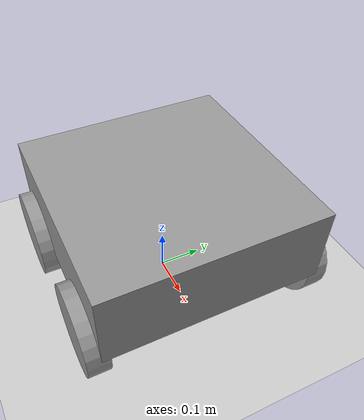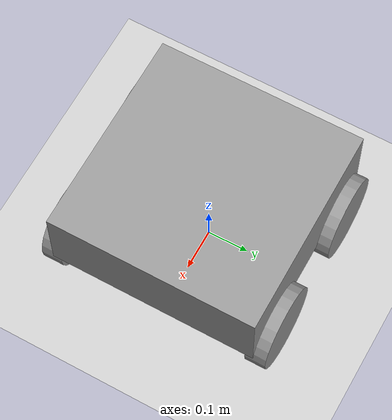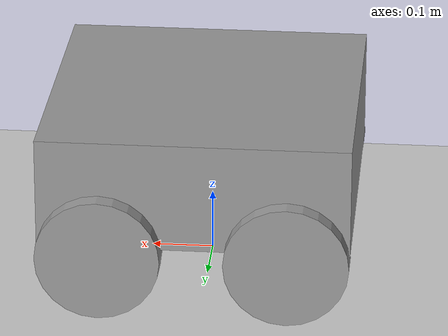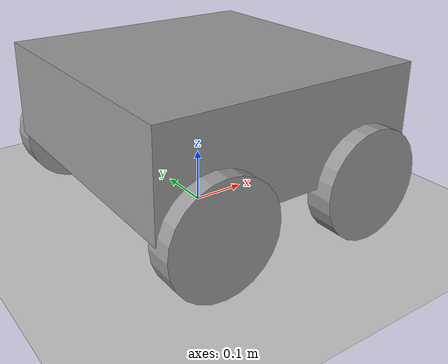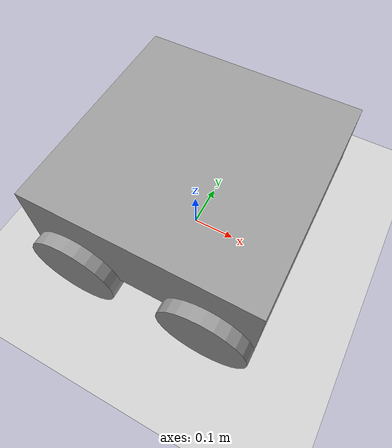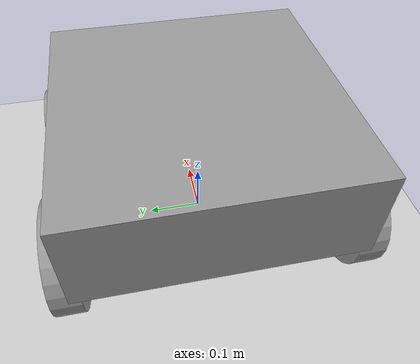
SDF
<?xml version="1.0"?>
<sdf version="1.4">
  <world name="default">

    <!-- Ground Plane -->
    <include>
      <uri>model://ground_plane</uri>
    </include>

    <include>
      <uri>model://sun</uri>
    </include>

    <include>
      <name>Carrinho_subs</name>
      <pose>0 0 0.12 0 0 0</pose>
      <uri>model://Carrinho_subs</uri>
    </include>

  </world>
</sdf>

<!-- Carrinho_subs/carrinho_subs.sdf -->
<sdf version='1.6'>
  <model name='Carrinho_subs'>
    <link name='Main'>
      <pose frame=''>0.01 -0 0.08 0 -0 0</pose>
      <inertial>
        <mass>1</mass>
        <inertia>
          <ixx>0.166667</ixx>
          <ixy>0</ixy>
          <ixz>0</ixz>
          <iyy>0.166667</iyy>
          <iyz>0</iyz>
          <izz>0.166667</izz>
        </inertia>
        <pose frame=''>0 0 0 0 -0 0</pose>
      </inertial>
      <self_collide>0</self_collide>
      <kinematic>0</kinematic>
      <visual name='visual'>
        <pose frame=''>0 0 0 0 -0 0</pose>
        <geometry>
          <box>
            <size>0.5 0.5 0.18</size>
          </box>
        </geometry>
        <material>
          <lighting>1</lighting>
          <script>
            <uri>file://media/materials/scripts/gazebo.material</uri>
            <name>Gazebo/Grey</name>
          </script>
          <ambient>1 1 1 1</ambient>
          <diffuse>0.7 0.7 0.7 1</diffuse>
          <specular>0.01 0.01 0.01 1</specular>
          <emissive>0 0 0 1</emissive>
          <shader type='vertex'>
            <normal_map>__default__</normal_map>
          </shader>
        </material>
        <cast_shadows>1</cast_shadows>
        <transparency>0</transparency>
      </visual>
      <collision name='collision'>
        <laser_retro>0</laser_retro>
        <max_contacts>10</max_contacts>
        <pose frame=''>0 0 0 0 -0 0</pose>
        <geometry>
          <box>
            <size>0.5 0.5 0.18</size>
          </box>
        </geometry>
        <surface>
          <friction>
            <ode>
              <mu>1</mu>
              <mu2>1</mu2>
              <fdir1>0 0 0</fdir1>
              <slip1>0</slip1>
              <slip2>0</slip2>
            </ode>
            <torsional>
              <coefficient>1</coefficient>
              <patch_radius>0</patch_radius>
              <surface_radius>0</surface_radius>
              <use_patch_radius>1</use_patch_radius>
              <ode>
                <slip>0</slip>
              </ode>
            </torsional>
          </friction>
          <bounce>
            <restitution_coefficient>0</restitution_coefficient>
            <threshold>1e+06</threshold>
          </bounce>
          <contact>
            <collide_without_contact>0</collide_without_contact>
            <collide_without_contact_bitmask>1</collide_without_contact_bitmask>
            <collide_bitmask>1</collide_bitmask>
            <ode>
              <soft_cfm>0</soft_cfm>
              <soft_erp>0.2</soft_erp>
              <kp>1e+13</kp>
              <kd>1</kd>
              <max_vel>0.01</max_vel>
              <min_depth>0</min_depth>
            </ode>
            <bullet>
              <split_impulse>1</split_impulse>
              <split_impulse_penetration_threshold>-0.01</split_impulse_penetration_threshold>
              <soft_cfm>0</soft_cfm>
              <soft_erp>0.2</soft_erp>
              <kp>1e+13</kp>
              <kd>1</kd>
            </bullet>
          </contact>
        </surface>
      </collision>
    </link>
    <link name='Roda_Back_Right'>
      <pose frame=''>-0.14 -0.255 -0.02 1.5708 -0 0</pose>
      <inertial>
        <mass>1</mass>
        <inertia>
          <ixx>0.145833</ixx>
          <ixy>0</ixy>
          <ixz>0</ixz>
          <iyy>0.145833</iyy>
          <iyz>0</iyz>
          <izz>0.125</izz>
        </inertia>
        <pose frame=''>0 0 0 0 -0 0</pose>
      </inertial>
      <self_collide>0</self_collide>
      <kinematic>0</kinematic>
      <visual name='visual'>
        <pose frame=''>0 0 0 0 -0 0</pose>
        <geometry>
          <cylinder>
            <radius>0.1</radius>
            <length>0.05</length>
          </cylinder>
        </geometry>
        <material>
          <lighting>1</lighting>
          <script>
            <uri>file://media/materials/scripts/gazebo.material</uri>
            <name>Gazebo/Grey</name>
          </script>
          <ambient>0.3 0.3 0.3 1</ambient>
          <diffuse>0.7 0.7 0.7 1</diffuse>
          <specular>0.01 0.01 0.01 1</specular>
          <emissive>0 0 0 1</emissive>
          <shader type='vertex'>
            <normal_map>__default__</normal_map>
          </shader>
        </material>
        <cast_shadows>1</cast_shadows>
        <transparency>0</transparency>
      </visual>
      <collision name='collision'>
        <laser_retro>0</laser_retro>
        <max_contacts>10</max_contacts>
        <pose frame=''>0 0 0 0 -0 0</pose>
        <geometry>
          <cylinder>
            <radius>0.1</radius>
            <length>0.05</length>
          </cylinder>
        </geometry>
        <surface>
          <friction>
            <ode>
              <mu>1</mu>
              <mu2>1</mu2>
              <fdir1>0 0 0</fdir1>
              <slip1>0</slip1>
              <slip2>0</slip2>
            </ode>
            <torsional>
              <coefficient>1</coefficient>
              <patch_radius>0</patch_radius>
              <surface_radius>0</surface_radius>
              <use_patch_radius>1</use_patch_radius>
              <ode>
                <slip>0</slip>
              </ode>
            </torsional>
          </friction>
          <bounce>
            <restitution_coefficient>0</restitution_coefficient>
            <threshold>1e+06</threshold>
          </bounce>
          <contact>
            <collide_without_contact>0</collide_without_contact>
            <collide_without_contact_bitmask>1</collide_without_contact_bitmask>
            <collide_bitmask>1</collide_bitmask>
            <ode>
              <soft_cfm>0</soft_cfm>
              <soft_erp>0.2</soft_erp>
              <kp>1e+13</kp>
              <kd>1</kd>
              <max_vel>0.01</max_vel>
              <min_depth>0</min_depth>
            </ode>
            <bullet>
              <split_impulse>1</split_impulse>
              <split_impulse_penetration_threshold>-0.01</split_impulse_penetration_threshold>
              <soft_cfm>0</soft_cfm>
              <soft_erp>0.2</soft_erp>
              <kp>1e+13</kp>
              <kd>1</kd>
            </bullet>
          </contact>
        </surface>
      </collision>
    </link>
    <link name='Roda_Back_Left'>
      <pose frame=''>-0.14 0.255 -0.02 1.5708 -0 0</pose>
      <inertial>
        <mass>1</mass>
        <inertia>
          <ixx>0.145833</ixx>
          <ixy>0</ixy>
          <ixz>0</ixz>
          <iyy>0.145833</iyy>
          <iyz>0</iyz>
          <izz>0.125</izz>
        </inertia>
        <pose frame=''>0 0 0 0 -0 0</pose>
      </inertial>
      <self_collide>0</self_collide>
      <kinematic>0</kinematic>
      <visual name='visual'>
        <pose frame=''>0 0 0 0 -0 0</pose>
        <geometry>
          <cylinder>
            <radius>0.1</radius>
            <length>0.05</length>
          </cylinder>
        </geometry>
        <material>
          <lighting>1</lighting>
          <script>
            <uri>file://media/materials/scripts/gazebo.material</uri>
            <name>Gazebo/Grey</name>
          </script>
          <ambient>0.3 0.3 0.3 1</ambient>
          <diffuse>0.7 0.7 0.7 1</diffuse>
          <specular>0.01 0.01 0.01 1</specular>
          <emissive>0 0 0 1</emissive>
          <shader type='vertex'>
            <normal_map>__default__</normal_map>
          </shader>
        </material>
        <cast_shadows>1</cast_shadows>
        <transparency>0</transparency>
      </visual>
      <collision name='collision'>
        <laser_retro>0</laser_retro>
        <max_contacts>10</max_contacts>
        <pose frame=''>0 0 0 0 -0 0</pose>
        <geometry>
          <cylinder>
            <radius>0.1</radius>
            <length>0.05</length>
          </cylinder>
        </geometry>
        <surface>
          <friction>
            <ode>
              <mu>1</mu>
              <mu2>1</mu2>
              <fdir1>0 0 0</fdir1>
              <slip1>0</slip1>
              <slip2>0</slip2>
            </ode>
            <torsional>
              <coefficient>1</coefficient>
              <patch_radius>0</patch_radius>
              <surface_radius>0</surface_radius>
              <use_patch_radius>1</use_patch_radius>
              <ode>
                <slip>0</slip>
              </ode>
            </torsional>
          </friction>
          <bounce>
            <restitution_coefficient>0</restitution_coefficient>
            <threshold>1e+06</threshold>
          </bounce>
          <contact>
            <collide_without_contact>0</collide_without_contact>
            <collide_without_contact_bitmask>1</collide_without_contact_bitmask>
            <collide_bitmask>1</collide_bitmask>
            <ode>
              <soft_cfm>0</soft_cfm>
              <soft_erp>0.2</soft_erp>
              <kp>1e+13</kp>
              <kd>1</kd>
              <max_vel>0.01</max_vel>
              <min_depth>0</min_depth>
            </ode>
            <bullet>
              <split_impulse>1</split_impulse>
              <split_impulse_penetration_threshold>-0.01</split_impulse_penetration_threshold>
              <soft_cfm>0</soft_cfm>
              <soft_erp>0.2</soft_erp>
              <kp>1e+13</kp>
              <kd>1</kd>
            </bullet>
          </contact>
        </surface>
      </collision>
    </link>
    <link name='Roda_Front_Right'>
      <pose frame=''>0.16 -0.255 -0.02 1.5708 -0 0</pose>
      <inertial>
        <mass>1</mass>
        <inertia>
          <ixx>0.145833</ixx>
          <ixy>0</ixy>
          <ixz>0</ixz>
          <iyy>0.145833</iyy>
          <iyz>0</iyz>
          <izz>0.125</izz>
        </inertia>
        <pose frame=''>0 0 0 0 -0 0</pose>
      </inertial>
      <self_collide>0</self_collide>
      <kinematic>0</kinematic>
      <visual name='visual'>
        <pose frame=''>0 0 0 0 -0 0</pose>
        <geometry>
          <cylinder>
            <radius>0.1</radius>
            <length>0.05</length>
          </cylinder>
        </geometry>
        <material>
          <lighting>1</lighting>
          <script>
            <uri>file://media/materials/scripts/gazebo.material</uri>
            <name>Gazebo/Grey</name>
          </script>
          <ambient>0.3 0.3 0.3 1</ambient>
          <diffuse>0.7 0.7 0.7 1</diffuse>
          <specular>0.01 0.01 0.01 1</specular>
          <emissive>0 0 0 1</emissive>
          <shader type='vertex'>
            <normal_map>__default__</normal_map>
          </shader>
        </material>
        <cast_shadows>1</cast_shadows>
        <transparency>0</transparency>
      </visual>
      <collision name='collision'>
        <laser_retro>0</laser_retro>
        <max_contacts>10</max_contacts>
        <pose frame=''>0 0 0 0 -0 0</pose>
        <geometry>
          <cylinder>
            <radius>0.1</radius>
            <length>0.05</length>
          </cylinder>
        </geometry>
        <surface>
          <friction>
            <ode>
              <mu>1</mu>
              <mu2>1</mu2>
              <fdir1>0 0 0</fdir1>
              <slip1>0</slip1>
              <slip2>0</slip2>
            </ode>
            <torsional>
              <coefficient>1</coefficient>
              <patch_radius>0</patch_radius>
              <surface_radius>0</surface_radius>
              <use_patch_radius>1</use_patch_radius>
              <ode>
                <slip>0</slip>
              </ode>
            </torsional>
          </friction>
          <bounce>
            <restitution_coefficient>0</restitution_coefficient>
            <threshold>1e+06</threshold>
          </bounce>
          <contact>
            <collide_without_contact>0</collide_without_contact>
            <collide_without_contact_bitmask>1</collide_without_contact_bitmask>
            <collide_bitmask>1</collide_bitmask>
            <ode>
              <soft_cfm>0</soft_cfm>
              <soft_erp>0.2</soft_erp>
              <kp>1e+13</kp>
              <kd>1</kd>
              <max_vel>0.01</max_vel>
              <min_depth>0</min_depth>
            </ode>
            <bullet>
              <split_impulse>1</split_impulse>
              <split_impulse_penetration_threshold>-0.01</split_impulse_penetration_threshold>
              <soft_cfm>0</soft_cfm>
              <soft_erp>0.2</soft_erp>
              <kp>1e+13</kp>
              <kd>1</kd>
            </bullet>
          </contact>
        </surface>
      </collision>
    </link>
    <link name='Roda_Front_Left'>
      <pose frame=''>0.16 0.255 -0.02 1.5708 -0 0</pose>
      <inertial>
        <mass>1</mass>
        <inertia>
          <ixx>0.145833</ixx>
          <ixy>0</ixy>
          <ixz>0</ixz>
          <iyy>0.145833</iyy>
          <iyz>0</iyz>
          <izz>0.125</izz>
        </inertia>
        <pose frame=''>0 0 0 0 -0 0</pose>
      </inertial>
      <self_collide>0</self_collide>
      <kinematic>0</kinematic>
      <visual name='visual'>
        <pose frame=''>0 0 0 0 -0 0</pose>
        <geometry>
          <cylinder>
            <radius>0.1</radius>
            <length>0.05</length>
          </cylinder>
        </geometry>
        <material>
          <lighting>1</lighting>
          <script>
            <uri>file://media/materials/scripts/gazebo.material</uri>
            <name>Gazebo/Grey</name>
          </script>
          <ambient>0.3 0.3 0.3 1</ambient>
          <diffuse>0.7 0.7 0.7 1</diffuse>
          <specular>0.01 0.01 0.01 1</specular>
          <emissive>0 0 0 1</emissive>
          <shader type='vertex'>
            <normal_map>__default__</normal_map>
          </shader>
        </material>
        <cast_shadows>1</cast_shadows>
        <transparency>0</transparency>
      </visual>
      <collision name='collision'>
        <laser_retro>0</laser_retro>
        <max_contacts>10</max_contacts>
        <pose frame=''>0 0 0 0 -0 0</pose>
        <geometry>
          <cylinder>
            <radius>0.1</radius>
            <length>0.05</length>
          </cylinder>
        </geometry>
        <surface>
          <friction>
            <ode>
              <mu>1</mu>
              <mu2>1</mu2>
              <fdir1>0 0 0</fdir1>
              <slip1>0</slip1>
              <slip2>0</slip2>
            </ode>
            <torsional>
              <coefficient>1</coefficient>
              <patch_radius>0</patch_radius>
              <surface_radius>0</surface_radius>
              <use_patch_radius>1</use_patch_radius>
              <ode>
                <slip>0</slip>
              </ode>
            </torsional>
          </friction>
          <bounce>
            <restitution_coefficient>0</restitution_coefficient>
            <threshold>1e+06</threshold>
          </bounce>
          <contact>
            <collide_without_contact>0</collide_without_contact>
            <collide_without_contact_bitmask>1</collide_without_contact_bitmask>
            <collide_bitmask>1</collide_bitmask>
            <ode>
              <soft_cfm>0</soft_cfm>
              <soft_erp>0.2</soft_erp>
              <kp>1e+13</kp>
              <kd>1</kd>
              <max_vel>0.01</max_vel>
              <min_depth>0</min_depth>
            </ode>
            <bullet>
              <split_impulse>1</split_impulse>
              <split_impulse_penetration_threshold>-0.01</split_impulse_penetration_threshold>
              <soft_cfm>0</soft_cfm>
              <soft_erp>0.2</soft_erp>
              <kp>1e+13</kp>
              <kd>1</kd>
            </bullet>
          </contact>
        </surface>
      </collision>
    </link>
    <joint name='Main_BR' type='revolute'>
      <parent>Main</parent>
      <child>Roda_Back_Right</child>
      <pose frame=''>0 0 0 0 -0 0</pose>
      <axis>
        <xyz>0 0 1</xyz>
        <use_parent_model_frame>0</use_parent_model_frame>
        <limit>
          <lower>-1.79769e+308</lower>
          <upper>1.79769e+308</upper>
          <effort>-1</effort>
          <velocity>-1</velocity>
        </limit>
        <dynamics>
          <spring_reference>0</spring_reference>
          <spring_stiffness>0</spring_stiffness>
          <damping>0</damping>
          <friction>0</friction>
        </dynamics>
      </axis>
      <physics>
        <ode>
          <limit>
            <cfm>0</cfm>
            <erp>0.2</erp>
          </limit>
          <suspension>
            <cfm>0</cfm>
            <erp>0.2</erp>
          </suspension>
        </ode>
      </physics>
    </joint>
    <joint name='Main_BL' type='revolute'>
      <parent>Main</parent>
      <child>Roda_Back_Left</child>
      <pose frame=''>0 0 0 0 -0 0</pose>
      <axis>
        <xyz>0 0 1</xyz>
        <use_parent_model_frame>0</use_parent_model_frame>
        <limit>
          <lower>-1.79769e+308</lower>
          <upper>1.79769e+308</upper>
          <effort>-1</effort>
          <velocity>-1</velocity>
        </limit>
        <dynamics>
          <spring_reference>0</spring_reference>
          <spring_stiffness>0</spring_stiffness>
          <damping>0</damping>
          <friction>0</friction>
        </dynamics>
      </axis>
      <physics>
        <ode>
          <limit>
            <cfm>0</cfm>
            <erp>0.2</erp>
          </limit>
          <suspension>
            <cfm>0</cfm>
            <erp>0.2</erp>
          </suspension>
        </ode>
      </physics>
    </joint>
    <joint name='Main_FR' type='revolute2'>
      <parent>Main</parent>
      <child>Roda_Front_Right</child>
      <pose frame=''>0 0 0 0 -0 0</pose>
      <axis>
        <xyz>0 0 1</xyz>
        <use_parent_model_frame>0</use_parent_model_frame>
        <limit>
          <lower>-1.5708</lower>
          <upper>1.5708</upper>
          <effort>-1</effort>
          <velocity>-1</velocity>
        </limit>
        <dynamics>
          <spring_reference>0</spring_reference>
          <spring_stiffness>0</spring_stiffness>
          <damping>0</damping>
          <friction>0</friction>
        </dynamics>
      </axis>
      <axis2>
        <xyz>0 1 0</xyz>
        <use_parent_model_frame>0</use_parent_model_frame>
        <dynamics>
          <spring_reference>0</spring_reference>
          <spring_stiffness>0</spring_stiffness>
          <damping>0</damping>
          <friction>0</friction>
        </dynamics>
        <limit>
          <lower>-0.785398</lower>
          <upper>0.785398</upper>
          <effort>-1</effort>
          <velocity>-1</velocity>
        </limit>
      </axis2>
      <physics>
        <ode>
          <limit>
            <cfm>0</cfm>
            <erp>0.2</erp>
          </limit>
          <suspension>
            <cfm>0</cfm>
            <erp>0.2</erp>
          </suspension>
        </ode>
      </physics>
    </joint>
    <joint name='Main_FL' type='revolute2'>
      <parent>Main</parent>
      <child>Roda_Front_Left</child>
      <pose frame=''>0 0 0 0 -0 0</pose>
      <axis>
        <xyz>0 0 1</xyz>
        <use_parent_model_frame>0</use_parent_model_frame>
        <limit>
          <lower>1.5708</lower>
          <upper>-1.5708</upper>
          <effort>-1</effort>
          <velocity>-1</velocity>
        </limit>
        <dynamics>
          <spring_reference>0</spring_reference>
          <spring_stiffness>0</spring_stiffness>
          <damping>0</damping>
          <friction>0</friction>
        </dynamics>
      </axis>
      <axis2>
        <xyz>0 1 0</xyz>
        <use_parent_model_frame>0</use_parent_model_frame>
        <dynamics>
          <spring_reference>0</spring_reference>
          <spring_stiffness>0</spring_stiffness>
          <damping>0</damping>
          <friction>0</friction>
        </dynamics>
        <limit>
          <lower>-0.785398</lower>
          <upper>0.785398</upper>
          <effort>-1</effort>
          <velocity>-1</velocity>
        </limit>
      </axis2>
      <physics>
        <ode>
          <limit>
            <cfm>0</cfm>
            <erp>0.2</erp>
          </limit>
          <suspension>
            <cfm>0</cfm>
            <erp>0.2</erp>
          </suspension>
        </ode>
      </physics>
    </joint>
    <static>0</static>
    <allow_auto_disable>1</allow_auto_disable>
    <plugin name="model_subs" filename="libmodel_subscriber.so">
    </plugin>
  </model>
</sdf>
